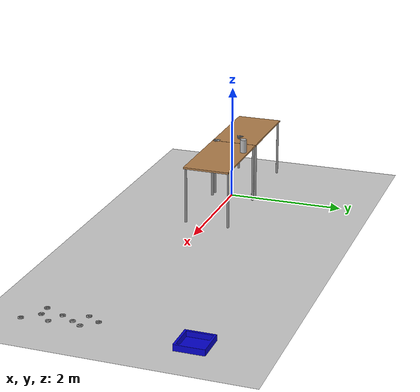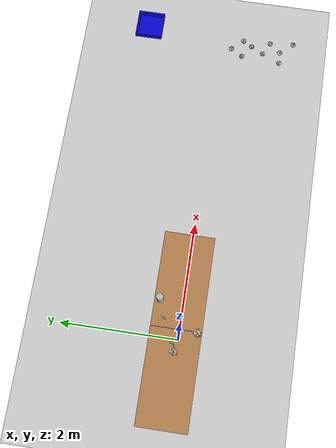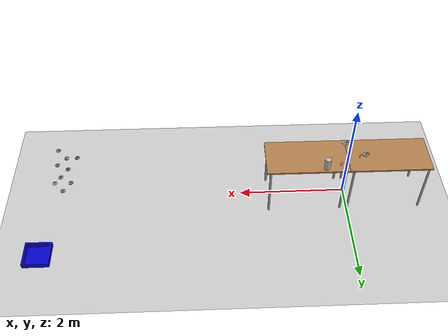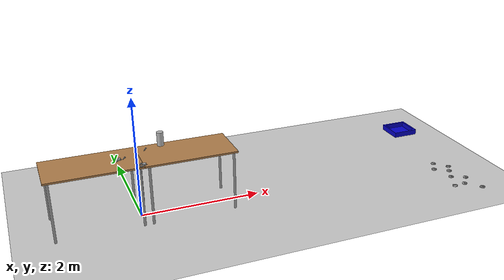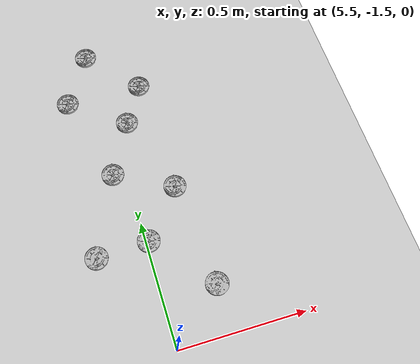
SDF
<sdf version="1.7">
 <world name="default">
  <model name="ground_plane">
   <static>1</static>
   <link name="link">
    <collision name="collision">
     <geometry><plane><normal>0 0 1</normal><size>100 100</size></plane></geometry>
     <surface><friction><ode><mu>100</mu><mu2>50</mu2></ode></friction></surface>
    </collision>
    <visual name="visual">
     <cast_shadows>0</cast_shadows>
     <geometry><plane><normal>0 0 1</normal><size>100 100</size></plane></geometry>
     <material>
      <script><uri>file://media/materials/scripts/gazebo.material</uri><name>Gazebo/Grey</name></script>
     </material>
    </visual>
   </link>
  </model>
  <model name="HV8_10">
   <pose>5.67508 -0.886858 -3e-06 -0.000159 7.4e-05 0.001489</pose>
   <static>0</static>
   <link name="HV8">
    <inertial>
     <mass>0.05</mass>
     <inertia><ixx>0.0002</ixx><ixy>0</ixy><ixz>0</ixz><iyy>0.0002</iyy><iyz>0</iyz><izz>0.0002</izz></inertia>
    </inertial>
    <collision name="collishin">
     <geometry><mesh><uri>model://HV8/meshes/HV8_1.stl</uri></mesh></geometry>
    </collision>
    <visual name="visual"><geometry><mesh><uri>model://HV8/meshes/HV8_1.stl</uri></mesh></geometry></visual>
   </link>
  </model>
  <model name="HV8_16">
   <pose>5.5629 -0.55266 3e-06 -0.000164 -2.7e-05 0.001484</pose>
   <static>0</static>
   <link name="HV8">
    <inertial>
     <mass>0.05</mass>
     <inertia><ixx>0.0002</ixx><ixy>0</ixy><ixz>0</ixz><iyy>0.0002</iyy><iyz>0</iyz><izz>0.0002</izz></inertia>
    </inertial>
    <collision name="collishin">
     <geometry><mesh><uri>model://HV8/meshes/HV8_1.stl</uri></mesh></geometry>
    </collision>
    <visual name="visual"><geometry><mesh><uri>model://HV8/meshes/HV8_1.stl</uri></mesh></geometry></visual>
   </link>
  </model>
  <model name="HV8_22">
   <pose>5.65801 -0.392313 -3e-06 -0.000159 7.4e-05 0.002861</pose>
   <static>0</static>
   <link name="HV8">
    <inertial>
     <mass>0.05</mass>
     <inertia><ixx>0.0002</ixx><ixy>0</ixy><ixz>0</ixz><iyy>0.0002</iyy><iyz>0</iyz><izz>0.0002</izz></inertia>
    </inertial>
    <collision name="collishin">
     <geometry><mesh><uri>model://HV8/meshes/HV8_1.stl</uri></mesh></geometry>
    </collision>
    <visual name="visual"><geometry><mesh><uri>model://HV8/meshes/HV8_1.stl</uri></mesh></geometry></visual>
   </link>
  </model>
  <model name="HV8_23">
   <pose>5.46877 -0.184021 -1.8e-05 0.000274 0.000329 0.001742</pose>
   <static>0</static>
   <link name="HV8">
    <inertial>
     <mass>0.05</mass>
     <inertia><ixx>0.0002</ixx><ixy>0</ixy><ixz>0</ixz><iyy>0.0002</iyy><iyz>0</iyz><izz>0.0002</izz></inertia>
    </inertial>
    <collision name="collishin">
     <geometry><mesh><uri>model://HV8/meshes/HV8_1.stl</uri></mesh></geometry>
    </collision>
    <visual name="visual"><geometry><mesh><uri>model://HV8/meshes/HV8_1.stl</uri></mesh></geometry></visual>
   </link>
  </model>
  <model name="HV8_24">
   <pose>5.34126 -0.392117 -3e-06 -0.000159 7.4e-05 0.002761</pose>
   <static>0</static>
   <link name="HV8">
    <inertial>
     <mass>0.05</mass>
     <inertia><ixx>0.0002</ixx><ixy>0</ixy><ixz>0</ixz><iyy>0.0002</iyy><iyz>0</iyz><izz>0.0002</izz></inertia>
    </inertial>
    <collision name="collishin">
     <geometry><mesh><uri>model://HV8/meshes/HV8_1.stl</uri></mesh></geometry>
    </collision>
    <visual name="visual"><geometry><mesh><uri>model://HV8/meshes/HV8_1.stl</uri></mesh></geometry></visual>
   </link>
  </model>
  <model name="HV8_28">
   <pose>5.71425 -1.31018 -3e-06 -0.000159 7.4e-05 0.001482</pose>
   <static>0</static>
   <link name="HV8">
    <inertial>
     <mass>0.05</mass>
     <inertia><ixx>0.0002</ixx><ixy>0</ixy><ixz>0</ixz><iyy>0.0002</iyy><iyz>0</iyz><izz>0.0002</izz></inertia>
    </inertial>
    <collision name="collishin">
     <geometry><mesh><uri>model://HV8/meshes/HV8_1.stl</uri></mesh></geometry>
    </collision>
    <visual name="visual"><geometry><mesh><uri>model://HV8/meshes/HV8_1.stl</uri></mesh></geometry></visual>
   </link>
  </model>
  <model name="HV8_29">
   <pose>5.30036 -1.08627 -1.8e-05 0.000274 0.000329 0.001481</pose>
   <static>0</static>
   <link name="HV8">
    <inertial>
     <mass>0.05</mass>
     <inertia><ixx>0.0002</ixx><ixy>0</ixy><ixz>0</ixz><iyy>0.0002</iyy><iyz>0</iyz><izz>0.0002</izz></inertia>
    </inertial>
    <collision name="collishin">
     <geometry><mesh><uri>model://HV8/meshes/HV8_1.stl</uri></mesh></geometry>
    </collision>
    <visual name="visual"><geometry><mesh><uri>model://HV8/meshes/HV8_1.stl</uri></mesh></geometry></visual>
   </link>
  </model>
  <model name="HV8_30">
   <pose>5.44651 -0.76717 -3e-06 -0.000159 7.4e-05 0.002859</pose>
   <static>0</static>
   <link name="HV8">
    <inertial>
     <mass>0.05</mass>
     <inertia><ixx>0.0002</ixx><ixy>0</ixy><ixz>0</ixz><iyy>0.0002</iyy><iyz>0</iyz><izz>0.0002</izz></inertia>
    </inertial>
    <collision name="collishin">
     <geometry><mesh><uri>model://HV8/meshes/HV8_1.stl</uri></mesh></geometry>
    </collision>
    <visual name="visual"><geometry><mesh><uri>model://HV8/meshes/HV8_1.stl</uri></mesh></geometry></visual>
   </link>
  </model>
  <model name="HV8_31">
   <pose>5.51105 -1.07736 -3e-06 -0.000159 7.4e-05 0.00148</pose>
   <static>0</static>
   <link name="HV8">
    <inertial>
     <mass>0.05</mass>
     <inertia><ixx>0.0002</ixx><ixy>0</ixy><ixz>0</ixz><iyy>0.0002</iyy><iyz>0</iyz><izz>0.0002</izz></inertia>
    </inertial>
    <collision name="collishin">
     <geometry><mesh><uri>model://HV8/meshes/HV8_1.stl</uri></mesh></geometry>
    </collision>
    <visual name="visual"><geometry><mesh><uri>model://HV8/meshes/HV8_1.stl</uri></mesh></geometry></visual>
   </link>
  </model>
  <model name="table">
   <static>1</static>
   <link name="link">
    <collision name="surface">
     <pose>0 0 1 0 -0 0</pose>
     <geometry><box><size>1.5 0.8 0.03</size></box></geometry>
     <surface><friction><ode><mu>0.6</mu><mu2>0.6</mu2></ode></friction></surface>
    </collision>
    <visual name="visual1">
     <pose>0 0 1 0 -0 0</pose>
     <geometry><box><size>1.5 0.8 0.03</size></box></geometry>
     <material>
      <script><uri>file://media/materials/scripts/gazebo.material</uri><name>Gazebo/Wood</name></script>
     </material>
    </visual>
    <collision name="front_left_leg">
     <pose>0.68 0.38 0.5 0 -0 0</pose>
     <geometry><cylinder><radius>0.02</radius><length>1</length></cylinder></geometry>
    </collision>
    <visual name="front_left_leg">
     <pose>0.68 0.38 0.5 0 -0 0</pose>
     <geometry><cylinder><radius>0.02</radius><length>1</length></cylinder></geometry>
     <material>
      <script><uri>file://media/materials/scripts/gazebo.material</uri><name>Gazebo/Grey</name></script>
     </material>
    </visual>
    <collision name="front_right_leg">
     <pose>0.68 -0.38 0.5 0 -0 0</pose>
     <geometry><cylinder><radius>0.02</radius><length>1</length></cylinder></geometry>
    </collision>
    <visual name="front_right_leg">
     <pose>0.68 -0.38 0.5 0 -0 0</pose>
     <geometry><cylinder><radius>0.02</radius><length>1</length></cylinder></geometry>
     <material>
      <script><uri>file://media/materials/scripts/gazebo.material</uri><name>Gazebo/Grey</name></script>
     </material>
    </visual>
    <collision name="back_right_leg">
     <pose>-0.68 -0.38 0.5 0 -0 0</pose>
     <geometry><cylinder><radius>0.02</radius><length>1</length></cylinder></geometry>
    </collision>
    <visual name="back_right_leg">
     <pose>-0.68 -0.38 0.5 0 -0 0</pose>
     <geometry><cylinder><radius>0.02</radius><length>1</length></cylinder></geometry>
     <material>
      <script><uri>file://media/materials/scripts/gazebo.material</uri><name>Gazebo/Grey</name></script>
     </material>
    </visual>
    <collision name="back_left_leg">
     <pose>-0.68 0.38 0.5 0 -0 0</pose>
     <geometry><cylinder><radius>0.02</radius><length>1</length></cylinder></geometry>
    </collision>
    <visual name="back_left_leg">
     <pose>-0.68 0.38 0.5 0 -0 0</pose>
     <geometry><cylinder><radius>0.02</radius><length>1</length></cylinder></geometry>
     <material>
      <script><uri>file://media/materials/scripts/gazebo.material</uri><name>Gazebo/Grey</name></script>
     </material>
    </visual>
   </link>
   <pose>-0.699846 0.048742 0 0 -0 0</pose>
  </model>
  <model name="table_0">
   <static>1</static>
   <link name="link">
    <collision name="surface">
     <pose>0 0 1 0 -0 0</pose>
     <geometry><box><size>1.5 0.8 0.03</size></box></geometry>
     <surface><friction><ode><mu>0.6</mu><mu2>0.6</mu2></ode></friction></surface>
    </collision>
    <visual name="visual1">
     <pose>0 0 1 0 -0 0</pose>
     <geometry><box><size>1.5 0.8 0.03</size></box></geometry>
     <material>
      <script><uri>file://media/materials/scripts/gazebo.material</uri><name>Gazebo/Wood</name></script>
     </material>
    </visual>
    <collision name="front_left_leg">
     <pose>0.68 0.38 0.5 0 -0 0</pose>
     <geometry><cylinder><radius>0.02</radius><length>1</length></cylinder></geometry>
    </collision>
    <visual name="front_left_leg">
     <pose>0.68 0.38 0.5 0 -0 0</pose>
     <geometry><cylinder><radius>0.02</radius><length>1</length></cylinder></geometry>
     <material>
      <script><uri>file://media/materials/scripts/gazebo.material</uri><name>Gazebo/Grey</name></script>
     </material>
    </visual>
    <collision name="front_right_leg">
     <pose>0.68 -0.38 0.5 0 -0 0</pose>
     <geometry><cylinder><radius>0.02</radius><length>1</length></cylinder></geometry>
    </collision>
    <visual name="front_right_leg">
     <pose>0.68 -0.38 0.5 0 -0 0</pose>
     <geometry><cylinder><radius>0.02</radius><length>1</length></cylinder></geometry>
     <material>
      <script><uri>file://media/materials/scripts/gazebo.material</uri><name>Gazebo/Grey</name></script>
     </material>
    </visual>
    <collision name="back_right_leg">
     <pose>-0.68 -0.38 0.5 0 -0 0</pose>
     <geometry><cylinder><radius>0.02</radius><length>1</length></cylinder></geometry>
    </collision>
    <visual name="back_right_leg">
     <pose>-0.68 -0.38 0.5 0 -0 0</pose>
     <geometry><cylinder><radius>0.02</radius><length>1</length></cylinder></geometry>
     <material>
      <script><uri>file://media/materials/scripts/gazebo.material</uri><name>Gazebo/Grey</name></script>
     </material>
    </visual>
    <collision name="back_left_leg">
     <pose>-0.68 0.38 0.5 0 -0 0</pose>
     <geometry><cylinder><radius>0.02</radius><length>1</length></cylinder></geometry>
    </collision>
    <visual name="back_left_leg">
     <pose>-0.68 0.38 0.5 0 -0 0</pose>
     <geometry><cylinder><radius>0.02</radius><length>1</length></cylinder></geometry>
     <material>
      <script><uri>file://media/materials/scripts/gazebo.material</uri><name>Gazebo/Grey</name></script>
     </material>
    </visual>
   </link>
   <pose>0.803284 0.047721 0 0 -0 0</pose>
  </model>
  <model name="object_box">
   <pose>5.69979 1.37861 0 0 -0 0</pose>
   <static>1</static>
   <link name="object_box">
    <inertial>
     <mass>0.2</mass>
     <inertia><ixx>0.0005</ixx><ixy>0</ixy><ixz>0</ixz><iyy>0.0005</iyy><iyz>0</iyz><izz>0.0005</izz></inertia>
    </inertial>
    <collision name="collision">
     <geometry><mesh><uri>model://object_box/meshed/object_box_kai_kai.dae</uri></mesh></geometry>
    </collision>
    <visual name="visual">
     <geometry><mesh><uri>model://object_box/meshed/object_box_kai_kai.dae</uri></mesh></geometry>
    </visual>
   </link>
  </model>
  <model name="beer">
   <link name="link">
    <pose>0 0 0.115 0 -0 0</pose>
    <inertial>
     <mass>0.39</mass>
     <inertia><ixx>0.00058</ixx><ixy>0</ixy><ixz>0</ixz><iyy>0.00058</iyy><iyz>0</iyz><izz>0.00019</izz></inertia>
    </inertial>
    <collision name="collision">
     <geometry><cylinder><radius>0.055</radius><length>0.23</length></cylinder></geometry>
    </collision>
    <visual name="visual">
     <geometry><cylinder><radius>0.055</radius><length>0.23</length></cylinder></geometry>
     <material>
      <script>
       <uri>model://beer/materials/scripts</uri>
       <uri>model://beer/materials/textures</uri>
       <name>Beer/Diffuse</name>
      </script>
     </material>
    </visual>
   </link>
   <pose>0.470367 0.360531 1.01501 -5.7e-05 -0.000132 0.111832</pose>
  </model>
  <model name="HV7">
   <pose>0.177612 0.245828 1.01967 0 -0 0</pose>
   <static>1</static>
   <link name="HV7">
    <inertial>
     <mass>0.2</mass>
     <inertia><ixx>0.0005</ixx><ixy>0</ixy><ixz>0</ixz><iyy>0.0005</iyy><iyz>0</iyz><izz>0.0005</izz></inertia>
    </inertial>
    <collision name="collishin">
     <geometry><mesh><uri>model://HV7/meshes/HV7_1.stl</uri></mesh></geometry>
    </collision>
    <visual name="visual"><geometry><mesh><uri>model://HV7/meshes/HV7_1.stl</uri></mesh></geometry></visual>
   </link>
  </model>
  <model name="HV7_0">
   <pose>-0.197165 0.049512 1.01201 0 -0 0</pose>
   <static>1</static>
   <link name="HV7">
    <inertial>
     <mass>0.2</mass>
     <inertia><ixx>0.0005</ixx><ixy>0</ixy><ixz>0</ixz><iyy>0.0005</iyy><iyz>0</iyz><izz>0.0005</izz></inertia>
    </inertial>
    <collision name="collishin">
     <geometry><mesh><uri>model://HV7/meshes/HV7_1.stl</uri></mesh></geometry>
    </collision>
    <visual name="visual"><geometry><mesh><uri>model://HV7/meshes/HV7_1.stl</uri></mesh></geometry></visual>
   </link>
  </model>
  <model name="HV6">
   <pose>-0.298728 0.047032 1.01666 0 -0 0</pose>
   <static>1</static>
   <link name="HV6">
    <collision name="collr"><geometry><mesh><uri>model://HV6/meshes/HV6_1.stl</uri></mesh></geometry></collision>
    <visual name="visual"><geometry><mesh><uri>model://HV6/meshes/HV6_1.stl</uri></mesh></geometry></visual>
   </link>
  </model>
  <model name="HV6_0">
   <pose>0.026319 -0.275678 1.01545 0 -0 0</pose>
   <static>1</static>
   <link name="HV6">
    <collision name="collr"><geometry><mesh><uri>model://HV6/meshes/HV6_1.stl</uri></mesh></geometry></collision>
    <visual name="visual"><geometry><mesh><uri>model://HV6/meshes/HV6_1.stl</uri></mesh></geometry></visual>
   </link>
  </model>
 </world>
</sdf>
